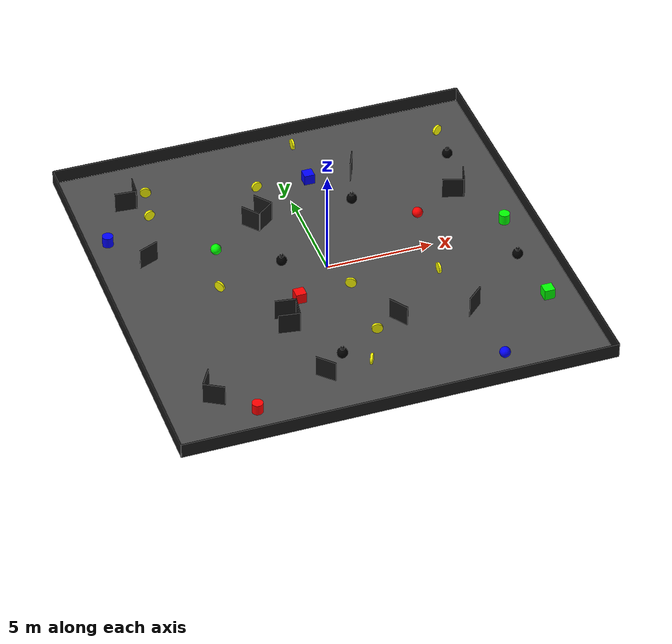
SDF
<sdf version="1.6">
 <world name="default">
  <model name="labrob_ground">
   <static>1</static>
   <link name="link">
    <collision name="collision">
     <geometry><plane><normal>0 0 1</normal><size>20 20</size></plane></geometry>
     <surface><contact><collide_bitmask>2</collide_bitmask></contact></surface>
    </collision>
    <visual name="visual">
     <cast_shadows>0</cast_shadows>
     <geometry><plane><normal>0 0 1</normal><size>20 20</size></plane></geometry>
     <material>
      <script>
       <uri>model://labrob_ground/materials/scripts/</uri>
       <uri>model://labrob_ground/materials/textures/</uri>
       <name>Labrob/AsphaltGround</name>
      </script>
     </material>
    </visual>
   </link>
  </model>
  <light name="sun" type="directional">
   <pose>0 0 10 0 -0 0</pose>
   <diffuse>0.8 0.8 0.8 1</diffuse>
   <specular>0.1 0.1 0.1 1</specular>
   <attenuation>
    <range>1000</range>
    <constant>0.9</constant>
    <linear>0.01</linear>
    <quadratic>0.001</quadratic>
   </attenuation>
   <direction>-0.5 0.5 -1</direction>
  </light>
  <model name="borders">
   <static>1</static>
   <link name="chassis_pos_x">
    <pose>10 0 0.35 0 -0 1.57079</pose>
    <collision name="collision_pos_x"><geometry><box><size>20 0.05 0.7</size></box></geometry></collision>
    <visual name="visual">
     <geometry><box><size>20 0.05 0.7</size></box></geometry>
     <material>
      <ambient>0.1 0.1 0.1 1</ambient>
      <diffuse>0.1 0.1 0.1 1</diffuse>
      <specular>0.1 0.1 0.1 1</specular>
      <emissive>0 0 0 0</emissive>
     </material>
    </visual>
    <sensor name="contact_sensor_1" type="contact">
     <plugin name="my_contact_plugin" filename="libgazebo_ros_bumper.so">
      <bumperTopicName>border_bumper</bumperTopicName>
      <frameName>world</frameName>
     </plugin>
     <contact><collision>collision_pos_x</collision><topic>__default_topic__</topic></contact>
    </sensor>
   </link>
   <link name="chassis_neg_x">
    <pose>-10 0 0.35 0 -0 1.57079</pose>
    <collision name="collision_neg_x"><geometry><box><size>20 0.05 0.7</size></box></geometry></collision>
    <visual name="visual">
     <geometry><box><size>20 0.05 0.7</size></box></geometry>
     <material>
      <ambient>0.1 0.1 0.1 1</ambient>
      <diffuse>0.1 0.1 0.1 1</diffuse>
      <specular>0.1 0.1 0.1 1</specular>
      <emissive>0 0 0 0</emissive>
     </material>
    </visual>
    <sensor name="contact_sensor_2" type="contact">
     <plugin name="my_contact_plugin" filename="libgazebo_ros_bumper.so">
      <bumperTopicName>border_bumper</bumperTopicName>
      <frameName>world</frameName>
     </plugin>
     <contact><collision>collision_neg_x</collision><topic>__default_topic__</topic></contact>
    </sensor>
   </link>
   <link name="chassis_pos_y">
    <pose>0 10 0.35 0 -0 0</pose>
    <collision name="collision_pos_y"><geometry><box><size>20 0.05 0.7</size></box></geometry></collision>
    <visual name="visual">
     <geometry><box><size>20 0.05 0.7</size></box></geometry>
     <material>
      <ambient>0.1 0.1 0.1 1</ambient>
      <diffuse>0.1 0.1 0.1 1</diffuse>
      <specular>0.1 0.1 0.1 1</specular>
      <emissive>0 0 0 0</emissive>
     </material>
    </visual>
    <sensor name="contact_sensor_3" type="contact">
     <plugin name="my_contact_plugin" filename="libgazebo_ros_bumper.so">
      <bumperTopicName>border_bumper</bumperTopicName>
      <frameName>world</frameName>
     </plugin>
     <contact><collision>collision_pos_y</collision><topic>__default_topic__</topic></contact>
    </sensor>
   </link>
   <link name="chassis_neg_y">
    <pose>0 -10 0.35 0 -0 0</pose>
    <collision name="collision_neg_y"><geometry><box><size>20 0.05 0.7</size></box></geometry></collision>
    <visual name="visual">
     <geometry><box><size>20 0.05 0.7</size></box></geometry>
     <material>
      <ambient>0.1 0.1 0.1 1</ambient>
      <diffuse>0.1 0.1 0.1 1</diffuse>
      <specular>0.1 0.1 0.1 1</specular>
      <emissive>0 0 0 0</emissive>
     </material>
    </visual>
    <sensor name="contact_sensor_4" type="contact">
     <plugin name="my_contact_plugin" filename="libgazebo_ros_bumper.so">
      <bumperTopicName>border_bumper</bumperTopicName>
      <frameName>world</frameName>
     </plugin>
     <contact><collision>collision_neg_y</collision><topic>__default_topic__</topic></contact>
    </sensor>
   </link>
  </model>
  <gravity>0 0 -9.8</gravity>
  <magnetic_field>6e-06 2.3e-05 -4.2e-05</magnetic_field>
  <atmosphere type="adiabatic"/>
  <physics name="default_physics" default="0" type="ode">
   <max_step_size>0.001</max_step_size>
   <real_time_factor>1</real_time_factor>
   <real_time_update_rate>1000</real_time_update_rate>
  </physics>
  <scene><ambient>0.4 0.4 0.4 1</ambient><background>0.7 0.7 0.7 1</background><shadows>1</shadows></scene>
  <spherical_coordinates>
   <surface_model>EARTH_WGS84</surface_model>
   <latitude_deg>0</latitude_deg>
   <longitude_deg>0</longitude_deg>
   <elevation>0</elevation>
   <heading_deg>0</heading_deg>
  </spherical_coordinates>
  <model name="coin_1">
   <link name="chassis">
    <pose>0 0 0.26 0 -0 0</pose>
    <collision name="box_collision">
     <geometry><sphere><radius>0.25</radius></sphere></geometry>
     <surface>
      <contact><collide_bitmask>1</collide_bitmask><ode><min_depth>10</min_depth><kp>1</kp></ode></contact>
     </surface>
    </collision>
    <visual name="visual">
     <pose>0 0 0 0 1.57 0</pose>
     <geometry><cylinder><radius>0.25</radius><length>0.1</length></cylinder></geometry>
     <material>
      <ambient>1 1 0 1</ambient>
      <diffuse>1 1 0 1</diffuse>
      <specular>0.1 0.1 0.1 1</specular>
      <emissive>0 0 0 0</emissive>
     </material>
    </visual>
    <sensor name="contact_sensor_1" type="contact">
     <plugin name="my_contact_plugin" filename="libgazebo_ros_bumper.so">
      <bumperTopicName>coin_bumper</bumperTopicName>
      <frameName>world</frameName>
     </plugin>
     <contact><collision>box_collision</collision><topic>__default_topic__</topic></contact>
    </sensor>
    <inertial>
     <inertia><ixx>1</ixx><ixy>0</ixy><ixz>0</ixz><iyy>1</iyy><iyz>0</iyz><izz>1</izz></inertia>
     <mass>1</mass>
    </inertial>
   </link>
   <joint name="coin_hinge" type="revolute">
    <pose>0 0 0.26 0 -0 0</pose>
    <child>chassis</child>
    <parent>world</parent>
    <axis>
     <xyz>0 0 1</xyz>
     <use_parent_model_frame>1</use_parent_model_frame>
     <limit><lower>-1e+16</lower><upper>1e+16</upper></limit>
     <dynamics><spring_reference>0</spring_reference><spring_stiffness>0</spring_stiffness></dynamics>
    </axis>
   </joint>
   <pose>0.535499 -1.67279 0 0 0 -2.07477</pose>
  </model>
  <model name="coin_2">
   <link name="chassis">
    <pose>0 0 0.26 0 -0 0</pose>
    <collision name="box_collision">
     <geometry><sphere><radius>0.25</radius></sphere></geometry>
     <surface>
      <contact><collide_bitmask>1</collide_bitmask><ode><min_depth>10</min_depth><kp>1</kp></ode></contact>
     </surface>
    </collision>
    <visual name="visual">
     <pose>0 0 0 0 1.57 0</pose>
     <geometry><cylinder><radius>0.25</radius><length>0.1</length></cylinder></geometry>
     <material>
      <ambient>1 1 0 1</ambient>
      <diffuse>1 1 0 1</diffuse>
      <specular>0.1 0.1 0.1 1</specular>
      <emissive>0 0 0 0</emissive>
     </material>
    </visual>
    <sensor name="contact_sensor_1" type="contact">
     <plugin name="my_contact_plugin" filename="libgazebo_ros_bumper.so">
      <bumperTopicName>coin_bumper</bumperTopicName>
      <frameName>world</frameName>
     </plugin>
     <contact><collision>box_collision</collision><topic>__default_topic__</topic></contact>
    </sensor>
    <inertial>
     <inertia><ixx>1</ixx><ixy>0</ixy><ixz>0</ixz><iyy>1</iyy><iyz>0</iyz><izz>1</izz></inertia>
     <mass>1</mass>
    </inertial>
   </link>
   <joint name="coin_hinge" type="revolute">
    <pose>0 0 0.26 0 -0 0</pose>
    <child>chassis</child>
    <parent>world</parent>
    <axis>
     <xyz>0 0 1</xyz>
     <use_parent_model_frame>1</use_parent_model_frame>
     <limit><lower>-1e+16</lower><upper>1e+16</upper></limit>
     <dynamics><spring_reference>0</spring_reference><spring_stiffness>0</spring_stiffness></dynamics>
    </axis>
   </joint>
   <pose>0.581038 -5.03889 0 0 0 -1.83433</pose>
  </model>
  <model name="coin_3">
   <link name="chassis">
    <pose>0 0 0.26 0 -0 0</pose>
    <collision name="box_collision">
     <geometry><sphere><radius>0.25</radius></sphere></geometry>
     <surface>
      <contact><collide_bitmask>1</collide_bitmask><ode><min_depth>10</min_depth><kp>1</kp></ode></contact>
     </surface>
    </collision>
    <visual name="visual">
     <pose>0 0 0 0 1.57 0</pose>
     <geometry><cylinder><radius>0.25</radius><length>0.1</length></cylinder></geometry>
     <material>
      <ambient>1 1 0 1</ambient>
      <diffuse>1 1 0 1</diffuse>
      <specular>0.1 0.1 0.1 1</specular>
      <emissive>0 0 0 0</emissive>
     </material>
    </visual>
    <sensor name="contact_sensor_1" type="contact">
     <plugin name="my_contact_plugin" filename="libgazebo_ros_bumper.so">
      <bumperTopicName>coin_bumper</bumperTopicName>
      <frameName>world</frameName>
     </plugin>
     <contact><collision>box_collision</collision><topic>__default_topic__</topic></contact>
    </sensor>
    <inertial>
     <inertia><ixx>1</ixx><ixy>0</ixy><ixz>0</ixz><iyy>1</iyy><iyz>0</iyz><izz>1</izz></inertia>
     <mass>1</mass>
    </inertial>
   </link>
   <joint name="coin_hinge" type="revolute">
    <pose>0 0 0.26 0 -0 0</pose>
    <child>chassis</child>
    <parent>world</parent>
    <axis>
     <xyz>0 0 1</xyz>
     <use_parent_model_frame>1</use_parent_model_frame>
     <limit><lower>-1e+16</lower><upper>1e+16</upper></limit>
     <dynamics><spring_reference>0</spring_reference><spring_stiffness>0</spring_stiffness></dynamics>
    </axis>
   </joint>
   <pose>-0.341977 -6.89468 0 0 0 -0.501674</pose>
  </model>
  <model name="coin_4">
   <link name="chassis">
    <pose>0 0 0.26 0 -0 0</pose>
    <collision name="box_collision">
     <geometry><sphere><radius>0.25</radius></sphere></geometry>
     <surface>
      <contact><collide_bitmask>1</collide_bitmask><ode><min_depth>10</min_depth><kp>1</kp></ode></contact>
     </surface>
    </collision>
    <visual name="visual">
     <pose>0 0 0 0 1.57 0</pose>
     <geometry><cylinder><radius>0.25</radius><length>0.1</length></cylinder></geometry>
     <material>
      <ambient>1 1 0 1</ambient>
      <diffuse>1 1 0 1</diffuse>
      <specular>0.1 0.1 0.1 1</specular>
      <emissive>0 0 0 0</emissive>
     </material>
    </visual>
    <sensor name="contact_sensor_1" type="contact">
     <plugin name="my_contact_plugin" filename="libgazebo_ros_bumper.so">
      <bumperTopicName>coin_bumper</bumperTopicName>
      <frameName>world</frameName>
     </plugin>
     <contact><collision>box_collision</collision><topic>__default_topic__</topic></contact>
    </sensor>
    <inertial>
     <inertia><ixx>1</ixx><ixy>0</ixy><ixz>0</ixz><iyy>1</iyy><iyz>0</iyz><izz>1</izz></inertia>
     <mass>1</mass>
    </inertial>
   </link>
   <joint name="coin_hinge" type="revolute">
    <pose>0 0 0.26 0 -0 0</pose>
    <child>chassis</child>
    <parent>world</parent>
    <axis>
     <xyz>0 0 1</xyz>
     <use_parent_model_frame>1</use_parent_model_frame>
     <limit><lower>-1e+16</lower><upper>1e+16</upper></limit>
     <dynamics><spring_reference>0</spring_reference><spring_stiffness>0</spring_stiffness></dynamics>
    </axis>
   </joint>
   <pose>-5.09801 -0.010363 0 0 0 -2.50666</pose>
  </model>
  <model name="coin_5">
   <link name="chassis">
    <pose>0 0 0.26 0 -0 0</pose>
    <collision name="box_collision">
     <geometry><sphere><radius>0.25</radius></sphere></geometry>
     <surface>
      <contact><collide_bitmask>1</collide_bitmask><ode><min_depth>10</min_depth><kp>1</kp></ode></contact>
     </surface>
    </collision>
    <visual name="visual">
     <pose>0 0 0 0 1.57 0</pose>
     <geometry><cylinder><radius>0.25</radius><length>0.1</length></cylinder></geometry>
     <material>
      <ambient>1 1 0 1</ambient>
      <diffuse>1 1 0 1</diffuse>
      <specular>0.1 0.1 0.1 1</specular>
      <emissive>0 0 0 0</emissive>
     </material>
    </visual>
    <sensor name="contact_sensor_1" type="contact">
     <plugin name="my_contact_plugin" filename="libgazebo_ros_bumper.so">
      <bumperTopicName>coin_bumper</bumperTopicName>
      <frameName>world</frameName>
     </plugin>
     <contact><collision>box_collision</collision><topic>__default_topic__</topic></contact>
    </sensor>
    <inertial>
     <inertia><ixx>1</ixx><ixy>0</ixy><ixz>0</ixz><iyy>1</iyy><iyz>0</iyz><izz>1</izz></inertia>
     <mass>1</mass>
    </inertial>
   </link>
   <joint name="coin_hinge" type="revolute">
    <pose>0 0 0.26 0 -0 0</pose>
    <child>chassis</child>
    <parent>world</parent>
    <axis>
     <xyz>0 0 1</xyz>
     <use_parent_model_frame>1</use_parent_model_frame>
     <limit><lower>-1e+16</lower><upper>1e+16</upper></limit>
     <dynamics><spring_reference>0</spring_reference><spring_stiffness>0</spring_stiffness></dynamics>
    </axis>
   </joint>
   <pose>-1.2612 6.3627 0 0 -0 1.76652</pose>
  </model>
  <model name="coin_6">
   <link name="chassis">
    <pose>0 0 0.26 0 -0 0</pose>
    <collision name="box_collision">
     <geometry><sphere><radius>0.25</radius></sphere></geometry>
     <surface>
      <contact><collide_bitmask>1</collide_bitmask><ode><min_depth>10</min_depth><kp>1</kp></ode></contact>
     </surface>
    </collision>
    <visual name="visual">
     <pose>0 0 0 0 1.57 0</pose>
     <geometry><cylinder><radius>0.25</radius><length>0.1</length></cylinder></geometry>
     <material>
      <ambient>1 1 0 1</ambient>
      <diffuse>1 1 0 1</diffuse>
      <specular>0.1 0.1 0.1 1</specular>
      <emissive>0 0 0 0</emissive>
     </material>
    </visual>
    <sensor name="contact_sensor_1" type="contact">
     <plugin name="my_contact_plugin" filename="libgazebo_ros_bumper.so">
      <bumperTopicName>coin_bumper</bumperTopicName>
      <frameName>world</frameName>
     </plugin>
     <contact><collision>box_collision</collision><topic>__default_topic__</topic></contact>
    </sensor>
    <inertial>
     <inertia><ixx>1</ixx><ixy>0</ixy><ixz>0</ixz><iyy>1</iyy><iyz>0</iyz><izz>1</izz></inertia>
     <mass>1</mass>
    </inertial>
   </link>
   <joint name="coin_hinge" type="revolute">
    <pose>0 0 0.26 0 -0 0</pose>
    <child>chassis</child>
    <parent>world</parent>
    <axis>
     <xyz>0 0 1</xyz>
     <use_parent_model_frame>1</use_parent_model_frame>
     <limit><lower>-1e+16</lower><upper>1e+16</upper></limit>
     <dynamics><spring_reference>0</spring_reference><spring_stiffness>0</spring_stiffness></dynamics>
    </axis>
   </joint>
   <pose>-6.57486 5.92197 0 0 0 -1.38555</pose>
  </model>
  <model name="coin_7">
   <link name="chassis">
    <pose>0 0 0.26 0 -0 0</pose>
    <collision name="box_collision">
     <geometry><sphere><radius>0.25</radius></sphere></geometry>
     <surface>
      <contact><collide_bitmask>1</collide_bitmask><ode><min_depth>10</min_depth><kp>1</kp></ode></contact>
     </surface>
    </collision>
    <visual name="visual">
     <pose>0 0 0 0 1.57 0</pose>
     <geometry><cylinder><radius>0.25</radius><length>0.1</length></cylinder></geometry>
     <material>
      <ambient>1 1 0 1</ambient>
      <diffuse>1 1 0 1</diffuse>
      <specular>0.1 0.1 0.1 1</specular>
      <emissive>0 0 0 0</emissive>
     </material>
    </visual>
    <sensor name="contact_sensor_1" type="contact">
     <plugin name="my_contact_plugin" filename="libgazebo_ros_bumper.so">
      <bumperTopicName>coin_bumper</bumperTopicName>
      <frameName>world</frameName>
     </plugin>
     <contact><collision>box_collision</collision><topic>__default_topic__</topic></contact>
    </sensor>
    <inertial>
     <inertia><ixx>1</ixx><ixy>0</ixy><ixz>0</ixz><iyy>1</iyy><iyz>0</iyz><izz>1</izz></inertia>
     <mass>1</mass>
    </inertial>
   </link>
   <joint name="coin_hinge" type="revolute">
    <pose>0 0 0.26 0 -0 0</pose>
    <child>chassis</child>
    <parent>world</parent>
    <axis>
     <xyz>0 0 1</xyz>
     <use_parent_model_frame>1</use_parent_model_frame>
     <limit><lower>-1e+16</lower><upper>1e+16</upper></limit>
     <dynamics><spring_reference>0</spring_reference><spring_stiffness>0</spring_stiffness></dynamics>
    </axis>
   </joint>
   <pose>-6.25622 7.61452 0 0 0 -1.85089</pose>
  </model>
  <model name="coin_8">
   <link name="chassis">
    <pose>0 0 0.26 0 -0 0</pose>
    <collision name="box_collision">
     <geometry><sphere><radius>0.25</radius></sphere></geometry>
     <surface>
      <contact><collide_bitmask>1</collide_bitmask><ode><min_depth>10</min_depth><kp>1</kp></ode></contact>
     </surface>
    </collision>
    <visual name="visual">
     <pose>0 0 0 0 1.57 0</pose>
     <geometry><cylinder><radius>0.25</radius><length>0.1</length></cylinder></geometry>
     <material>
      <ambient>1 1 0 1</ambient>
      <diffuse>1 1 0 1</diffuse>
      <specular>0.1 0.1 0.1 1</specular>
      <emissive>0 0 0 0</emissive>
     </material>
    </visual>
    <sensor name="contact_sensor_1" type="contact">
     <plugin name="my_contact_plugin" filename="libgazebo_ros_bumper.so">
      <bumperTopicName>coin_bumper</bumperTopicName>
      <frameName>world</frameName>
     </plugin>
     <contact><collision>box_collision</collision><topic>__default_topic__</topic></contact>
    </sensor>
    <inertial>
     <inertia><ixx>1</ixx><ixy>0</ixy><ixz>0</ixz><iyy>1</iyy><iyz>0</iyz><izz>1</izz></inertia>
     <mass>1</mass>
    </inertial>
   </link>
   <joint name="coin_hinge" type="revolute">
    <pose>0 0 0.26 0 -0 0</pose>
    <child>chassis</child>
    <parent>world</parent>
    <axis>
     <xyz>0 0 1</xyz>
     <use_parent_model_frame>1</use_parent_model_frame>
     <limit><lower>-1e+16</lower><upper>1e+16</upper></limit>
     <dynamics><spring_reference>0</spring_reference><spring_stiffness>0</spring_stiffness></dynamics>
    </axis>
   </joint>
   <pose>8.16448 7.71146 0 0 -0 2.02971</pose>
  </model>
  <model name="coin_9">
   <link name="chassis">
    <pose>0 0 0.26 0 -0 0</pose>
    <collision name="box_collision">
     <geometry><sphere><radius>0.25</radius></sphere></geometry>
     <surface>
      <contact><collide_bitmask>1</collide_bitmask><ode><min_depth>10</min_depth><kp>1</kp></ode></contact>
     </surface>
    </collision>
    <visual name="visual">
     <pose>0 0 0 0 1.57 0</pose>
     <geometry><cylinder><radius>0.25</radius><length>0.1</length></cylinder></geometry>
     <material>
      <ambient>1 1 0 1</ambient>
      <diffuse>1 1 0 1</diffuse>
      <specular>0.1 0.1 0.1 1</specular>
      <emissive>0 0 0 0</emissive>
     </material>
    </visual>
    <sensor name="contact_sensor_1" type="contact">
     <plugin name="my_contact_plugin" filename="libgazebo_ros_bumper.so">
      <bumperTopicName>coin_bumper</bumperTopicName>
      <frameName>world</frameName>
     </plugin>
     <contact><collision>box_collision</collision><topic>__default_topic__</topic></contact>
    </sensor>
    <inertial>
     <inertia><ixx>1</ixx><ixy>0</ixy><ixz>0</ixz><iyy>1</iyy><iyz>0</iyz><izz>1</izz></inertia>
     <mass>1</mass>
    </inertial>
   </link>
   <joint name="coin_hinge" type="revolute">
    <pose>0 0 0.26 0 -0 0</pose>
    <child>chassis</child>
    <parent>world</parent>
    <axis>
     <xyz>0 0 1</xyz>
     <use_parent_model_frame>1</use_parent_model_frame>
     <limit><lower>-1e+16</lower><upper>1e+16</upper></limit>
     <dynamics><spring_reference>0</spring_reference><spring_stiffness>0</spring_stiffness></dynamics>
    </axis>
   </joint>
   <pose>1.3301 8.88864 0 0 -0 0.019716</pose>
  </model>
  <model name="bomb_1">
   <link name="chassis">
    <pose>0 0 0.25 0 -0 0</pose>
    <collision name="box_collision">
     <geometry><sphere><radius>0.25</radius></sphere></geometry>
     <surface>
      <contact><collide_bitmask>1</collide_bitmask><ode><min_depth>10</min_depth><kp>1</kp></ode></contact>
     </surface>
    </collision>
    <visual name="visual">
     <pose>0 0 0.2 0 -0 0</pose>
     <geometry><cylinder><radius>0.1</radius><length>0.2</length></cylinder></geometry>
     <material>
      <ambient>0 0 0 1</ambient>
      <diffuse>0 0 0 1</diffuse>
      <specular>0.1 0.1 0.1 1</specular>
      <emissive>0 0 0 0</emissive>
     </material>
    </visual>
    <visual name="visual2">
     <geometry><sphere><radius>0.25</radius></sphere></geometry>
     <material>
      <ambient>0 0 0 1</ambient>
      <diffuse>0 0 0 1</diffuse>
      <specular>0.1 0.1 0.1 1</specular>
      <emissive>0 0 0 0</emissive>
     </material>
    </visual>
    <visual name="visual3">
     <pose>0 0 0.3 0 -0 0</pose>
     <geometry><cylinder><radius>0.01</radius><length>0.2</length></cylinder></geometry>
     <material>
      <ambient>1 1 1 1</ambient>
      <diffuse>1 1 1 1</diffuse>
      <specular>0.1 0.1 0.1 1</specular>
      <emissive>0 0 0 0</emissive>
     </material>
    </visual>
    <sensor name="contact_sensor_1" type="contact">
     <plugin name="my_contact_plugin" filename="libgazebo_ros_bumper.so">
      <bumperTopicName>bomb_bumper</bumperTopicName>
      <frameName>world</frameName>
     </plugin>
     <contact><collision>box_collision</collision><topic>__default_topic__</topic></contact>
    </sensor>
    <inertial>
     <inertia><ixx>1</ixx><ixy>0</ixy><ixz>0</ixz><iyy>1</iyy><iyz>0</iyz><izz>1</izz></inertia>
     <mass>1</mass>
    </inertial>
   </link>
   <joint name="bomb_hinge" type="revolute">
    <pose>0 0 0.2 0 -0 0</pose>
    <child>chassis</child>
    <parent>world</parent>
    <axis>
     <xyz>0 0 0</xyz>
     <use_parent_model_frame>1</use_parent_model_frame>
     <limit><lower>-1e+16</lower><upper>1e+16</upper></limit>
     <dynamics><spring_reference>0</spring_reference><spring_stiffness>0</spring_stiffness></dynamics>
    </axis>
   </joint>
   <pose>-1.42414 -6.08574 0 0 -0 0</pose>
  </model>
  <model name="bomb_3">
   <link name="chassis">
    <pose>0 0 0.25 0 -0 0</pose>
    <collision name="box_collision">
     <geometry><sphere><radius>0.25</radius></sphere></geometry>
     <surface>
      <contact><collide_bitmask>1</collide_bitmask><ode><min_depth>10</min_depth><kp>1</kp></ode></contact>
     </surface>
    </collision>
    <visual name="visual">
     <pose>0 0 0.2 0 -0 0</pose>
     <geometry><cylinder><radius>0.1</radius><length>0.2</length></cylinder></geometry>
     <material>
      <ambient>0 0 0 1</ambient>
      <diffuse>0 0 0 1</diffuse>
      <specular>0.1 0.1 0.1 1</specular>
      <emissive>0 0 0 0</emissive>
     </material>
    </visual>
    <visual name="visual2">
     <geometry><sphere><radius>0.25</radius></sphere></geometry>
     <material>
      <ambient>0 0 0 1</ambient>
      <diffuse>0 0 0 1</diffuse>
      <specular>0.1 0.1 0.1 1</specular>
      <emissive>0 0 0 0</emissive>
     </material>
    </visual>
    <visual name="visual3">
     <pose>0 0 0.3 0 -0 0</pose>
     <geometry><cylinder><radius>0.01</radius><length>0.2</length></cylinder></geometry>
     <material>
      <ambient>1 1 1 1</ambient>
      <diffuse>1 1 1 1</diffuse>
      <specular>0.1 0.1 0.1 1</specular>
      <emissive>0 0 0 0</emissive>
     </material>
    </visual>
    <sensor name="contact_sensor_1" type="contact">
     <plugin name="my_contact_plugin" filename="libgazebo_ros_bumper.so">
      <bumperTopicName>bomb_bumper</bumperTopicName>
      <frameName>world</frameName>
     </plugin>
     <contact><collision>box_collision</collision><topic>__default_topic__</topic></contact>
    </sensor>
    <inertial>
     <inertia><ixx>1</ixx><ixy>0</ixy><ixz>0</ixz><iyy>1</iyy><iyz>0</iyz><izz>1</izz></inertia>
     <mass>1</mass>
    </inertial>
   </link>
   <joint name="bomb_hinge" type="revolute">
    <pose>0 0 0.2 0 -0 0</pose>
    <child>chassis</child>
    <parent>world</parent>
    <axis>
     <xyz>0 0 0</xyz>
     <use_parent_model_frame>1</use_parent_model_frame>
     <limit><lower>-1e+16</lower><upper>1e+16</upper></limit>
     <dynamics><spring_reference>0</spring_reference><spring_stiffness>0</spring_stiffness></dynamics>
    </axis>
   </joint>
   <pose>2.60371 4.10278 0 0 -0 0</pose>
  </model>
  <model name="bomb_4">
   <link name="chassis">
    <pose>0 0 0.25 0 -0 0</pose>
    <collision name="box_collision">
     <geometry><sphere><radius>0.25</radius></sphere></geometry>
     <surface>
      <contact><collide_bitmask>1</collide_bitmask><ode><min_depth>10</min_depth><kp>1</kp></ode></contact>
     </surface>
    </collision>
    <visual name="visual">
     <pose>0 0 0.2 0 -0 0</pose>
     <geometry><cylinder><radius>0.1</radius><length>0.2</length></cylinder></geometry>
     <material>
      <ambient>0 0 0 1</ambient>
      <diffuse>0 0 0 1</diffuse>
      <specular>0.1 0.1 0.1 1</specular>
      <emissive>0 0 0 0</emissive>
     </material>
    </visual>
    <visual name="visual2">
     <geometry><sphere><radius>0.25</radius></sphere></geometry>
     <material>
      <ambient>0 0 0 1</ambient>
      <diffuse>0 0 0 1</diffuse>
      <specular>0.1 0.1 0.1 1</specular>
      <emissive>0 0 0 0</emissive>
     </material>
    </visual>
    <visual name="visual3">
     <pose>0 0 0.3 0 -0 0</pose>
     <geometry><cylinder><radius>0.01</radius><length>0.2</length></cylinder></geometry>
     <material>
      <ambient>1 1 1 1</ambient>
      <diffuse>1 1 1 1</diffuse>
      <specular>0.1 0.1 0.1 1</specular>
      <emissive>0 0 0 0</emissive>
     </material>
    </visual>
    <sensor name="contact_sensor_1" type="contact">
     <plugin name="my_contact_plugin" filename="libgazebo_ros_bumper.so">
      <bumperTopicName>bomb_bumper</bumperTopicName>
      <frameName>world</frameName>
     </plugin>
     <contact><collision>box_collision</collision><topic>__default_topic__</topic></contact>
    </sensor>
    <inertial>
     <inertia><ixx>1</ixx><ixy>0</ixy><ixz>0</ixz><iyy>1</iyy><iyz>0</iyz><izz>1</izz></inertia>
     <mass>1</mass>
    </inertial>
   </link>
   <joint name="bomb_hinge" type="revolute">
    <pose>0 0 0.2 0 -0 0</pose>
    <child>chassis</child>
    <parent>world</parent>
    <axis>
     <xyz>0 0 0</xyz>
     <use_parent_model_frame>1</use_parent_model_frame>
     <limit><lower>-1e+16</lower><upper>1e+16</upper></limit>
     <dynamics><spring_reference>0</spring_reference><spring_stiffness>0</spring_stiffness></dynamics>
    </axis>
   </joint>
   <pose>7.97808 5.88164 0 0 -0 0</pose>
  </model>
  <model name="wall_1_0">
   <static>1</static>
   <link name="chassis">
    <pose>0 0 0.5 0 -0 0</pose>
    <collision name="barrier_collision"><geometry><box><size>1 0.05 1</size></box></geometry></collision>
    <visual name="visual">
     <geometry><box><size>1 0.05 1</size></box></geometry>
     <material>
      <ambient>0.1 0.1 0.1 1</ambient>
      <diffuse>0.1 0.1 0.1 1</diffuse>
      <specular>0.1 0.1 0.1 1</specular>
      <emissive>0 0 0 0</emissive>
     </material>
    </visual>
    <sensor name="contact_sensor_1" type="contact">
     <plugin name="my_contact_plugin" filename="libgazebo_ros_bumper.so">
      <bumperTopicName>obstacle_bumper</bumperTopicName>
      <frameName>world</frameName>
     </plugin>
     <contact><collision>barrier_collision</collision><topic>__default_topic__</topic></contact>
    </sensor>
   </link>
   <pose>1.74282 -4.55571 0 0 0 -0.982297</pose>
  </model>
  <model name="wall_1_1">
   <static>1</static>
   <link name="chassis">
    <pose>0 0 0.5 0 -0 0</pose>
    <collision name="barrier_collision"><geometry><box><size>1 0.05 1</size></box></geometry></collision>
    <visual name="visual">
     <geometry><box><size>1 0.05 1</size></box></geometry>
     <material>
      <ambient>0.1 0.1 0.1 1</ambient>
      <diffuse>0.1 0.1 0.1 1</diffuse>
      <specular>0.1 0.1 0.1 1</specular>
      <emissive>0 0 0 0</emissive>
     </material>
    </visual>
    <sensor name="contact_sensor_1" type="contact">
     <plugin name="my_contact_plugin" filename="libgazebo_ros_bumper.so">
      <bumperTopicName>obstacle_bumper</bumperTopicName>
      <frameName>world</frameName>
     </plugin>
     <contact><collision>barrier_collision</collision><topic>__default_topic__</topic></contact>
    </sensor>
   </link>
   <pose>5.17082 -5.00226 0 0 0 -2.40649</pose>
  </model>
  <model name="wall_1_2">
   <static>1</static>
   <link name="chassis">
    <pose>0 0 0.5 0 -0 0</pose>
    <collision name="barrier_collision"><geometry><box><size>1 0.05 1</size></box></geometry></collision>
    <visual name="visual">
     <geometry><box><size>1 0.05 1</size></box></geometry>
     <material>
      <ambient>0.1 0.1 0.1 1</ambient>
      <diffuse>0.1 0.1 0.1 1</diffuse>
      <specular>0.1 0.1 0.1 1</specular>
      <emissive>0 0 0 0</emissive>
     </material>
    </visual>
    <sensor name="contact_sensor_1" type="contact">
     <plugin name="my_contact_plugin" filename="libgazebo_ros_bumper.so">
      <bumperTopicName>obstacle_bumper</bumperTopicName>
      <frameName>world</frameName>
     </plugin>
     <contact><collision>barrier_collision</collision><topic>__default_topic__</topic></contact>
    </sensor>
   </link>
   <pose>-2.54272 -7.13994 0 0 0 -0.796447</pose>
  </model>
  <model name="wall_2_0">
   <static>1</static>
   <link name="chassis">
    <pose>0 0 0.5 0 -0 0</pose>
    <collision name="barrier_collision"><geometry><box><size>1 0.05 1</size></box></geometry></collision>
    <visual name="visual">
     <geometry><box><size>1 0.05 1</size></box></geometry>
     <material>
      <ambient>0.1 0.1 0.1 1</ambient>
      <diffuse>0.1 0.1 0.1 1</diffuse>
      <specular>0.1 0.1 0.1 1</specular>
      <emissive>0 0 0 0</emissive>
     </material>
    </visual>
    <collision name="barrier_collision2">
     <pose>-0.475 0.525 0 0 -0 1.57</pose>
     <geometry><box><size>1 0.05 1</size></box></geometry>
    </collision>
    <visual name="visual2">
     <pose>-0.475 0.525 0 0 -0 1.57</pose>
     <geometry><box><size>1 0.05 1</size></box></geometry>
     <material>
      <ambient>0.1 0.1 0.1 1</ambient>
      <diffuse>0.1 0.1 0.1 1</diffuse>
      <specular>0.1 0.1 0.1 1</specular>
      <emissive>0 0 0 0</emissive>
     </material>
    </visual>
    <sensor name="contact_sensor_1" type="contact">
     <plugin name="my_contact_plugin" filename="libgazebo_ros_bumper.so">
      <bumperTopicName>obstacle_bumper</bumperTopicName>
      <frameName>world</frameName>
     </plugin>
     <contact><collision>barrier_collision</collision><topic>__default_topic__</topic></contact>
    </sensor>
    <sensor name="contact_sensor_2" type="contact">
     <plugin name="my_contact_plugin" filename="libgazebo_ros_bumper.so">
      <bumperTopicName>obstacle_bumper</bumperTopicName>
      <frameName>world</frameName>
     </plugin>
     <contact><collision>barrier_collision2</collision><topic>__default_topic__</topic></contact>
    </sensor>
   </link>
   <pose>-7.64072 -7.1503 0 0 0 -0.530965</pose>
  </model>
  <model name="wall_3_0">
   <static>1</static>
   <link name="chassis">
    <pose>0 0 0.5 0 -0 0</pose>
    <collision name="collision"><geometry><box><size>1 0.05 1</size></box></geometry></collision>
    <visual name="visual">
     <geometry><box><size>1 0.05 1</size></box></geometry>
     <material>
      <ambient>0.1 0.1 0.1 1</ambient>
      <diffuse>0.1 0.1 0.1 1</diffuse>
      <specular>0.1 0.1 0.1 1</specular>
      <emissive>0 0 0 0</emissive>
     </material>
    </visual>
    <collision name="collision2">
     <pose>-0.475 0.525 0 0 -0 1.57</pose>
     <geometry><box><size>1 0.05 1</size></box></geometry>
    </collision>
    <visual name="visual2">
     <pose>-0.475 0.525 0 0 -0 1.57</pose>
     <geometry><box><size>1 0.05 1</size></box></geometry>
     <material>
      <ambient>0.1 0.1 0.1 1</ambient>
      <diffuse>0.1 0.1 0.1 1</diffuse>
      <specular>0.1 0.1 0.1 1</specular>
      <emissive>0 0 0 0</emissive>
     </material>
    </visual>
    <collision name="collision3">
     <pose>0 1 0 0 -0 0</pose>
     <geometry><box><size>1 0.05 1</size></box></geometry>
    </collision>
    <visual name="visual3">
     <pose>0 1 0 0 -0 0</pose>
     <geometry><box><size>1 0.05 1</size></box></geometry>
     <material>
      <ambient>0.1 0.1 0.1 1</ambient>
      <diffuse>0.1 0.1 0.1 1</diffuse>
      <specular>0.1 0.1 0.1 1</specular>
      <emissive>0 0 0 0</emissive>
     </material>
    </visual>
    <sensor name="contact_sensor_1" type="contact">
     <plugin name="my_contact_plugin" filename="libgazebo_ros_bumper.so">
      <bumperTopicName>obstacle_bumper</bumperTopicName>
      <frameName>world</frameName>
     </plugin>
     <contact><collision>collision</collision><topic>__default_topic__</topic></contact>
    </sensor>
    <sensor name="contact_sensor_2" type="contact">
     <plugin name="my_contact_plugin" filename="libgazebo_ros_bumper.so">
      <bumperTopicName>obstacle_bumper</bumperTopicName>
      <frameName>world</frameName>
     </plugin>
     <contact><collision>collision2</collision><topic>__default_topic__</topic></contact>
    </sensor>
    <sensor name="contact_sensor_3" type="contact">
     <plugin name="my_contact_plugin" filename="libgazebo_ros_bumper.so">
      <bumperTopicName>obstacle_bumper</bumperTopicName>
      <frameName>world</frameName>
     </plugin>
     <contact><collision>collision3</collision><topic>__default_topic__</topic></contact>
    </sensor>
   </link>
   <pose>-2.90066 -2.71729 0 0 -0 2.99118</pose>
  </model>
  <model name="wall_1_3">
   <static>1</static>
   <link name="chassis">
    <pose>0 0 0.5 0 -0 0</pose>
    <collision name="barrier_collision"><geometry><box><size>1 0.05 1</size></box></geometry></collision>
    <visual name="visual">
     <geometry><box><size>1 0.05 1</size></box></geometry>
     <material>
      <ambient>0.1 0.1 0.1 1</ambient>
      <diffuse>0.1 0.1 0.1 1</diffuse>
      <specular>0.1 0.1 0.1 1</specular>
      <emissive>0 0 0 0</emissive>
     </material>
    </visual>
    <sensor name="contact_sensor_1" type="contact">
     <plugin name="my_contact_plugin" filename="libgazebo_ros_bumper.so">
      <bumperTopicName>obstacle_bumper</bumperTopicName>
      <frameName>world</frameName>
     </plugin>
     <contact><collision>barrier_collision</collision><topic>__default_topic__</topic></contact>
    </sensor>
   </link>
   <pose>-7.53425 2.88935 0 0 -0 0.407105</pose>
  </model>
  <model name="wall_2_1">
   <static>1</static>
   <link name="chassis">
    <pose>0 0 0.5 0 -0 0</pose>
    <collision name="barrier_collision"><geometry><box><size>1 0.05 1</size></box></geometry></collision>
    <visual name="visual">
     <geometry><box><size>1 0.05 1</size></box></geometry>
     <material>
      <ambient>0.1 0.1 0.1 1</ambient>
      <diffuse>0.1 0.1 0.1 1</diffuse>
      <specular>0.1 0.1 0.1 1</specular>
      <emissive>0 0 0 0</emissive>
     </material>
    </visual>
    <collision name="barrier_collision2">
     <pose>-0.475 0.525 0 0 -0 1.57</pose>
     <geometry><box><size>1 0.05 1</size></box></geometry>
    </collision>
    <visual name="visual2">
     <pose>-0.475 0.525 0 0 -0 1.57</pose>
     <geometry><box><size>1 0.05 1</size></box></geometry>
     <material>
      <ambient>0.1 0.1 0.1 1</ambient>
      <diffuse>0.1 0.1 0.1 1</diffuse>
      <specular>0.1 0.1 0.1 1</specular>
      <emissive>0 0 0 0</emissive>
     </material>
    </visual>
    <sensor name="contact_sensor_1" type="contact">
     <plugin name="my_contact_plugin" filename="libgazebo_ros_bumper.so">
      <bumperTopicName>obstacle_bumper</bumperTopicName>
      <frameName>world</frameName>
     </plugin>
     <contact><collision>barrier_collision</collision><topic>__default_topic__</topic></contact>
    </sensor>
    <sensor name="contact_sensor_2" type="contact">
     <plugin name="my_contact_plugin" filename="libgazebo_ros_bumper.so">
      <bumperTopicName>obstacle_bumper</bumperTopicName>
      <frameName>world</frameName>
     </plugin>
     <contact><collision>barrier_collision2</collision><topic>__default_topic__</topic></contact>
    </sensor>
   </link>
   <pose>-6.8372 7.42761 0 0 -0 1.49429</pose>
  </model>
  <model name="wall_3_1">
   <static>1</static>
   <link name="chassis">
    <pose>0 0 0.5 0 -0 0</pose>
    <collision name="collision"><geometry><box><size>1 0.05 1</size></box></geometry></collision>
    <visual name="visual">
     <geometry><box><size>1 0.05 1</size></box></geometry>
     <material>
      <ambient>0.1 0.1 0.1 1</ambient>
      <diffuse>0.1 0.1 0.1 1</diffuse>
      <specular>0.1 0.1 0.1 1</specular>
      <emissive>0 0 0 0</emissive>
     </material>
    </visual>
    <collision name="collision2">
     <pose>-0.475 0.525 0 0 -0 1.57</pose>
     <geometry><box><size>1 0.05 1</size></box></geometry>
    </collision>
    <visual name="visual2">
     <pose>-0.475 0.525 0 0 -0 1.57</pose>
     <geometry><box><size>1 0.05 1</size></box></geometry>
     <material>
      <ambient>0.1 0.1 0.1 1</ambient>
      <diffuse>0.1 0.1 0.1 1</diffuse>
      <specular>0.1 0.1 0.1 1</specular>
      <emissive>0 0 0 0</emissive>
     </material>
    </visual>
    <collision name="collision3">
     <pose>0 1 0 0 -0 0</pose>
     <geometry><box><size>1 0.05 1</size></box></geometry>
    </collision>
    <visual name="visual3">
     <pose>0 1 0 0 -0 0</pose>
     <geometry><box><size>1 0.05 1</size></box></geometry>
     <material>
      <ambient>0.1 0.1 0.1 1</ambient>
      <diffuse>0.1 0.1 0.1 1</diffuse>
      <specular>0.1 0.1 0.1 1</specular>
      <emissive>0 0 0 0</emissive>
     </material>
    </visual>
    <sensor name="contact_sensor_1" type="contact">
     <plugin name="my_contact_plugin" filename="libgazebo_ros_bumper.so">
      <bumperTopicName>obstacle_bumper</bumperTopicName>
      <frameName>world</frameName>
     </plugin>
     <contact><collision>collision</collision><topic>__default_topic__</topic></contact>
    </sensor>
    <sensor name="contact_sensor_2" type="contact">
     <plugin name="my_contact_plugin" filename="libgazebo_ros_bumper.so">
      <bumperTopicName>obstacle_bumper</bumperTopicName>
      <frameName>world</frameName>
     </plugin>
     <contact><collision>collision2</collision><topic>__default_topic__</topic></contact>
    </sensor>
    <sensor name="contact_sensor_3" type="contact">
     <plugin name="my_contact_plugin" filename="libgazebo_ros_bumper.so">
      <bumperTopicName>obstacle_bumper</bumperTopicName>
      <frameName>world</frameName>
     </plugin>
     <contact><collision>collision3</collision><topic>__default_topic__</topic></contact>
    </sensor>
   </link>
   <pose>-1.57684 4.49546 0 0 -0 2.23896</pose>
  </model>
  <model name="wall_1_4">
   <static>1</static>
   <link name="chassis">
    <pose>0 0 0.5 0 -0 0</pose>
    <collision name="barrier_collision"><geometry><box><size>1 0.05 1</size></box></geometry></collision>
    <visual name="visual">
     <geometry><box><size>1 0.05 1</size></box></geometry>
     <material>
      <ambient>0.1 0.1 0.1 1</ambient>
      <diffuse>0.1 0.1 0.1 1</diffuse>
      <specular>0.1 0.1 0.1 1</specular>
      <emissive>0 0 0 0</emissive>
     </material>
    </visual>
    <sensor name="contact_sensor_1" type="contact">
     <plugin name="my_contact_plugin" filename="libgazebo_ros_bumper.so">
      <bumperTopicName>obstacle_bumper</bumperTopicName>
      <frameName>world</frameName>
     </plugin>
     <contact><collision>barrier_collision</collision><topic>__default_topic__</topic></contact>
    </sensor>
   </link>
   <pose>3.28369 6.10489 0 0 0 -1.9823</pose>
  </model>
  <model name="wall_2_2">
   <static>1</static>
   <link name="chassis">
    <pose>0 0 0.5 0 -0 0</pose>
    <collision name="barrier_collision"><geometry><box><size>1 0.05 1</size></box></geometry></collision>
    <visual name="visual">
     <geometry><box><size>1 0.05 1</size></box></geometry>
     <material>
      <ambient>0.1 0.1 0.1 1</ambient>
      <diffuse>0.1 0.1 0.1 1</diffuse>
      <specular>0.1 0.1 0.1 1</specular>
      <emissive>0 0 0 0</emissive>
     </material>
    </visual>
    <collision name="barrier_collision2">
     <pose>-0.475 0.525 0 0 -0 1.57</pose>
     <geometry><box><size>1 0.05 1</size></box></geometry>
    </collision>
    <visual name="visual2">
     <pose>-0.475 0.525 0 0 -0 1.57</pose>
     <geometry><box><size>1 0.05 1</size></box></geometry>
     <material>
      <ambient>0.1 0.1 0.1 1</ambient>
      <diffuse>0.1 0.1 0.1 1</diffuse>
      <specular>0.1 0.1 0.1 1</specular>
      <emissive>0 0 0 0</emissive>
     </material>
    </visual>
    <sensor name="contact_sensor_1" type="contact">
     <plugin name="my_contact_plugin" filename="libgazebo_ros_bumper.so">
      <bumperTopicName>obstacle_bumper</bumperTopicName>
      <frameName>world</frameName>
     </plugin>
     <contact><collision>barrier_collision</collision><topic>__default_topic__</topic></contact>
    </sensor>
    <sensor name="contact_sensor_2" type="contact">
     <plugin name="my_contact_plugin" filename="libgazebo_ros_bumper.so">
      <bumperTopicName>obstacle_bumper</bumperTopicName>
      <frameName>world</frameName>
     </plugin>
     <contact><collision>barrier_collision2</collision><topic>__default_topic__</topic></contact>
    </sensor>
   </link>
   <pose>7.80967 3.30716 0 0 -0 1.27436</pose>
  </model>
  <model name="bomb">
   <link name="chassis">
    <pose>0 0 0.25 0 -0 0</pose>
    <collision name="box_collision">
     <geometry><sphere><radius>0.25</radius></sphere></geometry>
     <surface>
      <contact><collide_bitmask>1</collide_bitmask><ode><min_depth>10</min_depth><kp>1</kp></ode></contact>
     </surface>
    </collision>
    <visual name="visual">
     <pose>0 0 0.2 0 -0 0</pose>
     <geometry><cylinder><radius>0.1</radius><length>0.2</length></cylinder></geometry>
     <material>
      <ambient>0 0 0 1</ambient>
      <diffuse>0 0 0 1</diffuse>
      <specular>0.1 0.1 0.1 1</specular>
      <emissive>0 0 0 0</emissive>
     </material>
    </visual>
    <visual name="visual2">
     <geometry><sphere><radius>0.25</radius></sphere></geometry>
     <material>
      <ambient>0 0 0 1</ambient>
      <diffuse>0 0 0 1</diffuse>
      <specular>0.1 0.1 0.1 1</specular>
      <emissive>0 0 0 0</emissive>
     </material>
    </visual>
    <visual name="visual3">
     <pose>0 0 0.3 0 -0 0</pose>
     <geometry><cylinder><radius>0.01</radius><length>0.2</length></cylinder></geometry>
     <material>
      <ambient>1 1 1 1</ambient>
      <diffuse>1 1 1 1</diffuse>
      <specular>0.1 0.1 0.1 1</specular>
      <emissive>0 0 0 0</emissive>
     </material>
    </visual>
    <sensor name="contact_sensor_1" type="contact">
     <plugin name="my_contact_plugin" filename="libgazebo_ros_bumper.so">
      <bumperTopicName>bomb_bumper</bumperTopicName>
      <frameName>world</frameName>
     </plugin>
     <contact><collision>box_collision</collision><topic>__default_topic__</topic></contact>
    </sensor>
    <inertial>
     <inertia><ixx>1</ixx><ixy>0</ixy><ixz>0</ixz><iyy>1</iyy><iyz>0</iyz><izz>1</izz></inertia>
     <mass>1</mass>
    </inertial>
   </link>
   <joint name="bomb_hinge" type="revolute">
    <pose>0 0 0.2 0 -0 0</pose>
    <child>chassis</child>
    <parent>world</parent>
    <axis>
     <xyz>0 0 0</xyz>
     <use_parent_model_frame>1</use_parent_model_frame>
     <limit><lower>-1e+16</lower><upper>1e+16</upper></limit>
     <dynamics><spring_reference>0</spring_reference><spring_stiffness>0</spring_stiffness></dynamics>
    </axis>
   </joint>
   <pose>-1.89771 0.855552 0 0 -0 0</pose>
  </model>
  <model name="bomb_5">
   <link name="chassis">
    <pose>0 0 0.25 0 -0 0</pose>
    <collision name="box_collision">
     <geometry><sphere><radius>0.25</radius></sphere></geometry>
     <surface>
      <contact><collide_bitmask>1</collide_bitmask><ode><min_depth>10</min_depth><kp>1</kp></ode></contact>
     </surface>
    </collision>
    <visual name="visual">
     <pose>0 0 0.2 0 -0 0</pose>
     <geometry><cylinder><radius>0.1</radius><length>0.2</length></cylinder></geometry>
     <material>
      <ambient>0 0 0 1</ambient>
      <diffuse>0 0 0 1</diffuse>
      <specular>0.1 0.1 0.1 1</specular>
      <emissive>0 0 0 0</emissive>
     </material>
    </visual>
    <visual name="visual2">
     <geometry><sphere><radius>0.25</radius></sphere></geometry>
     <material>
      <ambient>0 0 0 1</ambient>
      <diffuse>0 0 0 1</diffuse>
      <specular>0.1 0.1 0.1 1</specular>
      <emissive>0 0 0 0</emissive>
     </material>
    </visual>
    <visual name="visual3">
     <pose>0 0 0.3 0 -0 0</pose>
     <geometry><cylinder><radius>0.01</radius><length>0.2</length></cylinder></geometry>
     <material>
      <ambient>1 1 1 1</ambient>
      <diffuse>1 1 1 1</diffuse>
      <specular>0.1 0.1 0.1 1</specular>
      <emissive>0 0 0 0</emissive>
     </material>
    </visual>
    <sensor name="contact_sensor_1" type="contact">
     <plugin name="my_contact_plugin" filename="libgazebo_ros_bumper.so">
      <bumperTopicName>bomb_bumper</bumperTopicName>
      <frameName>world</frameName>
     </plugin>
     <contact><collision>box_collision</collision><topic>__default_topic__</topic></contact>
    </sensor>
    <inertial>
     <inertia><ixx>1</ixx><ixy>0</ixy><ixz>0</ixz><iyy>1</iyy><iyz>0</iyz><izz>1</izz></inertia>
     <mass>1</mass>
    </inertial>
   </link>
   <joint name="bomb_hinge" type="revolute">
    <pose>0 0 0.2 0 -0 0</pose>
    <child>chassis</child>
    <parent>world</parent>
    <axis>
     <xyz>0 0 0</xyz>
     <use_parent_model_frame>1</use_parent_model_frame>
     <limit><lower>-1e+16</lower><upper>1e+16</upper></limit>
     <dynamics><spring_reference>0</spring_reference><spring_stiffness>0</spring_stiffness></dynamics>
    </axis>
   </joint>
   <pose>8.33782 -2.17598 0 0 -0 0</pose>
  </model>
  <model name="coin_0">
   <link name="chassis">
    <pose>0 0 0.26 0 -0 0</pose>
    <collision name="box_collision">
     <geometry><sphere><radius>0.25</radius></sphere></geometry>
     <surface>
      <contact><collide_bitmask>1</collide_bitmask><ode><min_depth>10</min_depth><kp>1</kp></ode></contact>
     </surface>
    </collision>
    <visual name="visual">
     <pose>0 0 0 0 1.57 0</pose>
     <geometry><cylinder><radius>0.25</radius><length>0.1</length></cylinder></geometry>
     <material>
      <ambient>1 1 0 1</ambient>
      <diffuse>1 1 0 1</diffuse>
      <specular>0.1 0.1 0.1 1</specular>
      <emissive>0 0 0 0</emissive>
     </material>
    </visual>
    <sensor name="contact_sensor_1" type="contact">
     <plugin name="my_contact_plugin" filename="libgazebo_ros_bumper.so">
      <bumperTopicName>coin_bumper</bumperTopicName>
      <frameName>world</frameName>
     </plugin>
     <contact><collision>box_collision</collision><topic>__default_topic__</topic></contact>
    </sensor>
    <inertial>
     <inertia><ixx>1</ixx><ixy>0</ixy><ixz>0</ixz><iyy>1</iyy><iyz>0</iyz><izz>1</izz></inertia>
     <mass>1</mass>
    </inertial>
   </link>
   <joint name="coin_hinge" type="revolute">
    <pose>0 0 0.26 0 -0 0</pose>
    <child>chassis</child>
    <parent>world</parent>
    <axis>
     <xyz>0 0 1</xyz>
     <use_parent_model_frame>1</use_parent_model_frame>
     <limit><lower>-1e+16</lower><upper>1e+16</upper></limit>
     <dynamics><spring_reference>0</spring_reference><spring_stiffness>0</spring_stiffness></dynamics>
    </axis>
   </joint>
   <pose>4.60746 -1.98293 0 0 -0 0</pose>
  </model>
  <model name="sphere_blue">
   <static>1</static>
   <link name="chassis">
    <pose>0 0 0.25 0 -0 0</pose>
    <collision name="collision"><geometry><sphere><radius>0.25</radius></sphere></geometry></collision>
    <visual name="visual">
     <geometry><sphere><radius>0.25</radius></sphere></geometry>
     <material>
      <ambient>0 0 1 1</ambient>
      <diffuse>0 0 1 1</diffuse>
      <specular>0.1 0.1 0.1 1</specular>
      <emissive>0 0 0 0</emissive>
     </material>
    </visual>
   </link>
   <pose>5.30382 -8.37998 0 0 -0 0</pose>
  </model>
  <model name="sphere_green">
   <static>1</static>
   <link name="chassis">
    <pose>0 0 0.25 0 -0 0</pose>
    <collision name="collision"><geometry><sphere><radius>0.25</radius></sphere></geometry></collision>
    <visual name="visual">
     <geometry><sphere><radius>0.25</radius></sphere></geometry>
     <material>
      <ambient>0 1 0 1</ambient>
      <diffuse>0 1 0 1</diffuse>
      <specular>0.1 0.1 0.1 1</specular>
      <emissive>0 0 0 0</emissive>
     </material>
    </visual>
   </link>
   <pose>-4.44347 2.57751 0 0 -0 0</pose>
  </model>
  <model name="sphere_red">
   <static>1</static>
   <link name="chassis">
    <pose>0 0 0.25 0 -0 0</pose>
    <collision name="collision"><geometry><sphere><radius>0.25</radius></sphere></geometry></collision>
    <visual name="visual">
     <geometry><sphere><radius>0.25</radius></sphere></geometry>
     <material>
      <ambient>1 0 0 1</ambient>
      <diffuse>1 0 0 1</diffuse>
      <specular>0.1 0.1 0.1 1</specular>
      <emissive>0 0 0 0</emissive>
     </material>
    </visual>
   </link>
   <pose>5.11253 2.12706 0 0 -0 0</pose>
  </model>
  <model name="cylinder_red">
   <static>1</static>
   <link name="chassis">
    <pose>0 0 0.25 0 -0 0</pose>
    <collision name="collision">
     <geometry><cylinder><radius>0.25</radius><length>0.5</length></cylinder></geometry>
    </collision>
    <visual name="visual">
     <geometry><cylinder><radius>0.25</radius><length>0.5</length></cylinder></geometry>
     <material>
      <ambient>1 0 0 1</ambient>
      <diffuse>1 0 0 1</diffuse>
      <specular>0.1 0.1 0.1 1</specular>
      <emissive>0 0 0 0</emissive>
     </material>
    </visual>
   </link>
   <pose>-6.04285 -8.28033 0 0 -0 0</pose>
  </model>
  <model name="cylinder_green">
   <static>1</static>
   <link name="chassis">
    <pose>0 0 0.25 0 -0 0</pose>
    <collision name="collision">
     <geometry><cylinder><radius>0.25</radius><length>0.5</length></cylinder></geometry>
    </collision>
    <visual name="visual">
     <geometry><cylinder><radius>0.25</radius><length>0.5</length></cylinder></geometry>
     <material>
      <ambient>0 1 0 1</ambient>
      <diffuse>0 1 0 1</diffuse>
      <specular>0.1 0.1 0.1 1</specular>
      <emissive>0 0 0 0</emissive>
     </material>
    </visual>
   </link>
   <pose>8.73348 0.459754 0 0 -0 0</pose>
  </model>
  <model name="cube_blue">
   <static>1</static>
   <link name="chassis">
    <pose>0 0 0.25 0 -0 0</pose>
    <collision name="collision"><geometry><box><size>0.5 0.5 0.5</size></box></geometry></collision>
    <visual name="visual">
     <geometry><box><size>0.5 0.5 0.5</size></box></geometry>
     <material>
      <ambient>0 0 1 1</ambient>
      <diffuse>0 0 1 1</diffuse>
      <specular>0.1 0.1 0.1 1</specular>
      <emissive>0 0 0 0</emissive>
     </material>
    </visual>
   </link>
   <pose>1.22451 6.28722 0 0 -0 0</pose>
  </model>
  <model name="cylinder_blue">
   <static>1</static>
   <link name="chassis">
    <pose>0 0 0.25 0 -0 0</pose>
    <collision name="collision">
     <geometry><cylinder><radius>0.25</radius><length>0.5</length></cylinder></geometry>
    </collision>
    <visual name="visual">
     <geometry><cylinder><radius>0.25</radius><length>0.5</length></cylinder></geometry>
     <material>
      <ambient>0 0 1 1</ambient>
      <diffuse>0 0 1 1</diffuse>
      <specular>0.1 0.1 0.1 1</specular>
      <emissive>0 0 0 0</emissive>
     </material>
    </visual>
   </link>
   <pose>-8.89156 4.79685 0 0 -0 0</pose>
  </model>
  <model name="cube_green">
   <static>1</static>
   <link name="chassis">
    <pose>0 0 0.25 0 -0 0</pose>
    <collision name="collision"><geometry><box><size>0.5 0.5 0.5</size></box></geometry></collision>
    <visual name="visual">
     <geometry><box><size>0.5 0.5 0.5</size></box></geometry>
     <material>
      <ambient>0 1 0 1</ambient>
      <diffuse>0 1 0 1</diffuse>
      <specular>0.1 0.1 0.1 1</specular>
      <emissive>0 0 0 0</emissive>
     </material>
    </visual>
   </link>
   <pose>8.62224 -5.14107 0 0 -0 0</pose>
  </model>
  <model name="cube_red">
   <static>1</static>
   <link name="chassis">
    <pose>0 0 0.25 0 -0 0</pose>
    <collision name="collision"><geometry><box><size>0.5 0.5 0.5</size></box></geometry></collision>
    <visual name="visual">
     <geometry><box><size>0.5 0.5 0.5</size></box></geometry>
     <material>
      <ambient>1 0 0 1</ambient>
      <diffuse>1 0 0 1</diffuse>
      <specular>0.1 0.1 0.1 1</specular>
      <emissive>0 0 0 0</emissive>
     </material>
    </visual>
   </link>
   <pose>-1.92585 -1.78799 0 0 -0 0</pose>
  </model>
 </world>
</sdf>
